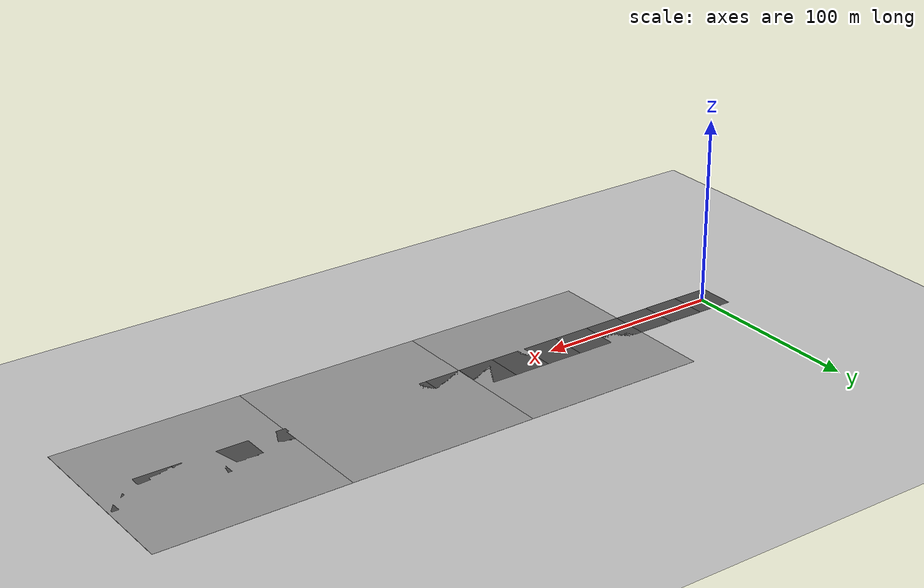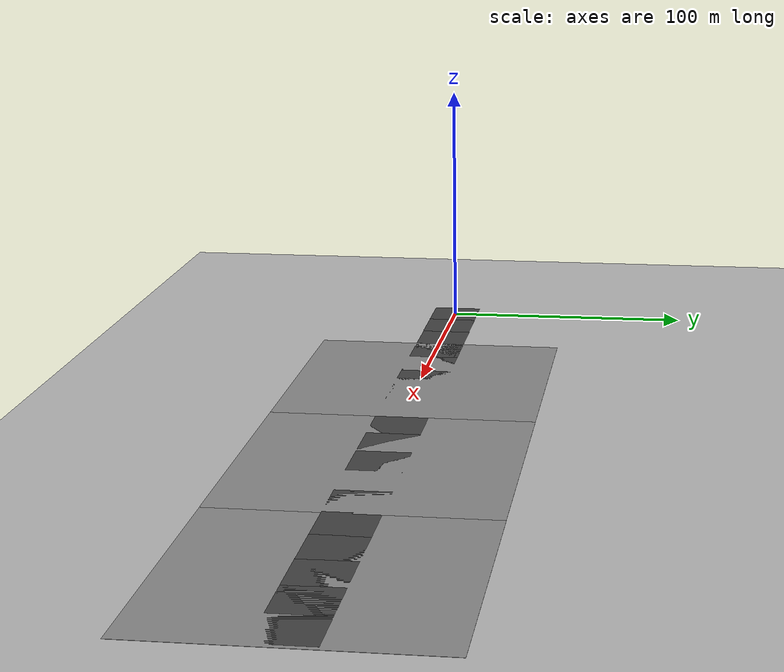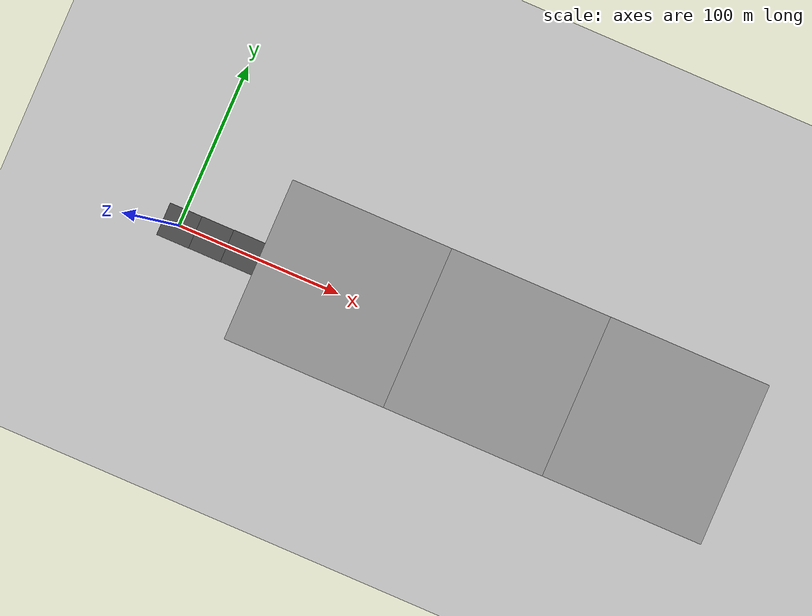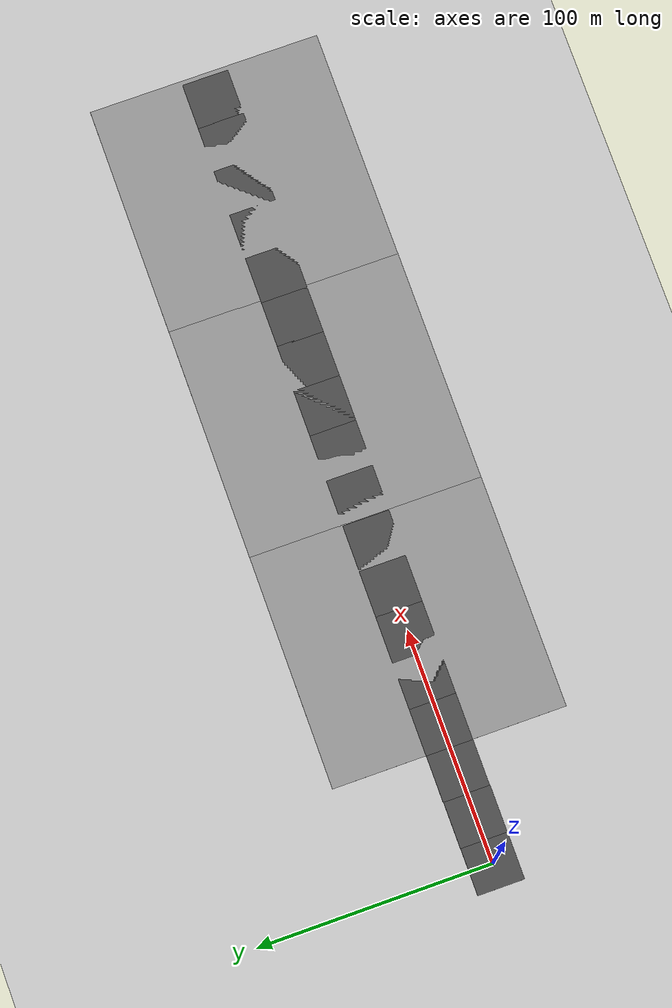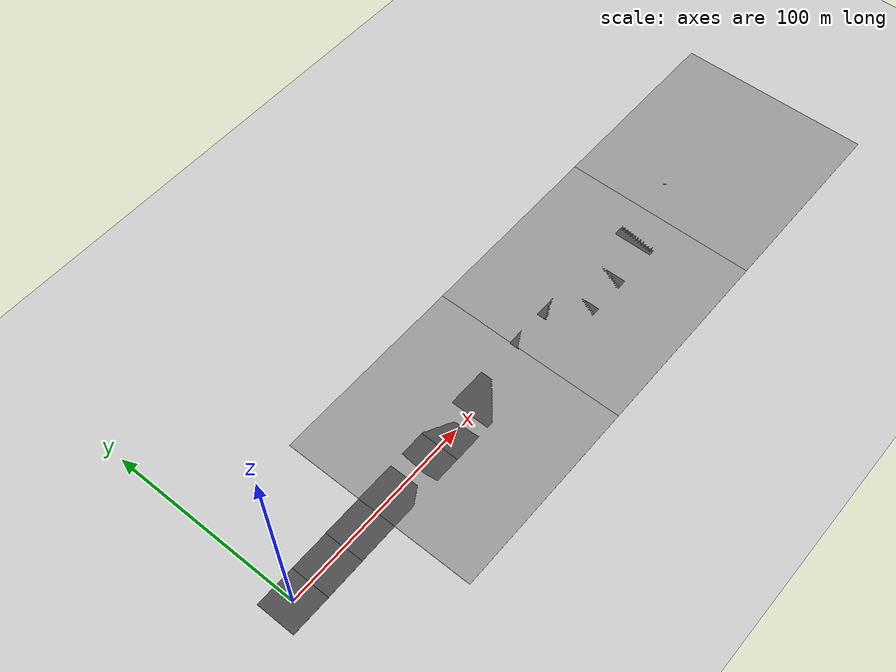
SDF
<sdf version="1.6">
 <world name="default">
  <light name="sun" type="directional">
   <pose>0 0 10 0 -0 0</pose>
   <diffuse>0.8 0.8 0.8 1</diffuse>
   <specular>0.2 0.2 0.2 1</specular>
   <attenuation>
    <range>1000</range>
    <constant>0.9</constant>
    <linear>0.01</linear>
    <quadratic>0.001</quadratic>
   </attenuation>
   <direction>-0.5 0.1 -0.9</direction>
  </light>
  <model name="ground_plane">
   <static>1</static>
   <link name="link">
    <collision name="collision">
     <geometry><plane><normal>0 0 1</normal><size>100 100</size></plane></geometry>
     <surface><friction><ode><mu>100</mu><mu2>50</mu2></ode></friction></surface>
    </collision>
    <visual name="visual">
     <cast_shadows>0</cast_shadows>
     <geometry><plane><normal>0 0 1</normal><size>100 100</size></plane></geometry>
     <material>
      <script><uri>file://media/materials/scripts/gazebo.material</uri><name>Gazebo/Grey</name></script>
     </material>
    </visual>
   </link>
  </model>
  <model name="asphalt_plane">
   <static>1</static>
   <link name="link">
    <collision name="collision"><geometry><box><size>20 20 0.1</size></box></geometry></collision>
    <visual name="visual">
     <cast_shadows>0</cast_shadows>
     <geometry><box><size>20 20 0.1</size></box></geometry>
     <material>
      <script>
       <uri>model://asphalt_plane/materials/scripts</uri>
       <uri>model://asphalt_plane/materials/textures</uri>
       <name>vrc/asphalt</name>
      </script>
     </material>
    </visual>
   </link>
  </model>
  <physics name="default_physics" default="0" type="ode">
   <ode>
    <solver>
     <type>quick</type>
     <iters>10</iters>
     <sor>1.3</sor>
     <use_dynamic_moi_rescaling>0</use_dynamic_moi_rescaling>
    </solver>
    <constraints>
     <cfm>0</cfm>
     <erp>0.2</erp>
     <contact_max_correcting_vel>100</contact_max_correcting_vel>
     <contact_surface_layer>0.001</contact_surface_layer>
    </constraints>
   </ode>
   <max_step_size>0.004</max_step_size>
   <real_time_factor>1</real_time_factor>
   <real_time_update_rate>250</real_time_update_rate>
  </physics>
  <gravity>0 0 -9.8066</gravity>
  <magnetic_field>6e-06 2.3e-05 -4.2e-05</magnetic_field>
  <atmosphere type="adiabatic"/>
  <scene><ambient>0.4 0.4 0.4 1</ambient><background>0.7 0.7 0.7 1</background><shadows>1</shadows></scene>
  <spherical_coordinates>
   <surface_model>EARTH_WGS84</surface_model>
   <latitude_deg>0</latitude_deg>
   <longitude_deg>0</longitude_deg>
   <elevation>0</elevation>
   <heading_deg>0</heading_deg>
  </spherical_coordinates>
  <model name="asphalt_plane_0">
   <static>1</static>
   <link name="link">
    <collision name="collision"><geometry><box><size>20 20 0.1</size></box></geometry></collision>
    <visual name="visual">
     <cast_shadows>0</cast_shadows>
     <geometry><box><size>20 20 0.1</size></box></geometry>
     <material>
      <script>
       <uri>model://asphalt_plane/materials/scripts</uri>
       <uri>model://asphalt_plane/materials/textures</uri>
       <name>vrc/asphalt</name>
      </script>
     </material>
    </visual>
   </link>
   <pose>19.9542 0.075557 0 0 -0 0</pose>
  </model>
  <model name="asphalt_plane_1">
   <static>1</static>
   <link name="link">
    <collision name="collision"><geometry><box><size>20 20 0.1</size></box></geometry></collision>
    <visual name="visual">
     <cast_shadows>0</cast_shadows>
     <geometry><box><size>20 20 0.1</size></box></geometry>
     <material>
      <script>
       <uri>model://asphalt_plane/materials/scripts</uri>
       <uri>model://asphalt_plane/materials/textures</uri>
       <name>vrc/asphalt</name>
      </script>
     </material>
    </visual>
   </link>
   <pose>39.6433 0.2429 0 0 -0 0</pose>
  </model>
  <model name="ground_plane_0">
   <static>1</static>
   <link name="link">
    <collision name="collision">
     <geometry><plane><normal>0 0 1</normal><size>100 100</size></plane></geometry>
     <surface>
      <contact><collide_bitmask>65535</collide_bitmask></contact>
      <friction><ode><mu>100</mu><mu2>50</mu2></ode></friction>
     </surface>
    </collision>
    <visual name="visual">
     <cast_shadows>0</cast_shadows>
     <geometry><plane><normal>0 0 1</normal><size>100 100</size></plane></geometry>
     <material>
      <script><uri>file://media/materials/scripts/gazebo.material</uri><name>Gazebo/Grey</name></script>
     </material>
    </visual>
   </link>
   <pose>99.5914 0.206765 0 0 -0 0</pose>
  </model>
  <model name="asphalt_plane_2">
   <static>1</static>
   <link name="link">
    <collision name="collision"><geometry><box><size>20 20 0.1</size></box></geometry></collision>
    <visual name="visual">
     <cast_shadows>0</cast_shadows>
     <geometry><box><size>20 20 0.1</size></box></geometry>
     <material>
      <script>
       <uri>model://asphalt_plane/materials/scripts</uri>
       <uri>model://asphalt_plane/materials/textures</uri>
       <name>vrc/asphalt</name>
      </script>
     </material>
    </visual>
   </link>
   <pose>59.4891 0.311433 0 0 -0 0</pose>
  </model>
  <model name="asphalt_plane_3">
   <static>1</static>
   <link name="link">
    <collision name="collision"><geometry><box><size>20 20 0.1</size></box></geometry></collision>
    <visual name="visual">
     <cast_shadows>0</cast_shadows>
     <geometry><box><size>20 20 0.1</size></box></geometry>
     <material>
      <script>
       <uri>model://asphalt_plane/materials/scripts</uri>
       <uri>model://asphalt_plane/materials/textures</uri>
       <name>vrc/asphalt</name>
      </script>
     </material>
    </visual>
   </link>
   <pose>79.4389 0.326107 0 0 -0 0</pose>
  </model>
  <model name="asphalt_plane_4">
   <static>1</static>
   <link name="link">
    <collision name="collision"><geometry><box><size>20 20 0.1</size></box></geometry></collision>
    <visual name="visual">
     <cast_shadows>0</cast_shadows>
     <geometry><box><size>20 20 0.1</size></box></geometry>
     <material>
      <script>
       <uri>model://asphalt_plane/materials/scripts</uri>
       <uri>model://asphalt_plane/materials/textures</uri>
       <name>vrc/asphalt</name>
      </script>
     </material>
    </visual>
   </link>
   <pose>99.396 0.280743 0 0 -0 0</pose>
  </model>
  <model name="asphalt_plane_5">
   <static>1</static>
   <link name="link">
    <collision name="collision"><geometry><box><size>20 20 0.1</size></box></geometry></collision>
    <visual name="visual">
     <cast_shadows>0</cast_shadows>
     <geometry><box><size>20 20 0.1</size></box></geometry>
     <material>
      <script>
       <uri>model://asphalt_plane/materials/scripts</uri>
       <uri>model://asphalt_plane/materials/textures</uri>
       <name>vrc/asphalt</name>
      </script>
     </material>
    </visual>
   </link>
   <pose>119.292 0.296855 0 0 -0 0</pose>
  </model>
  <model name="ground_plane_1">
   <static>1</static>
   <link name="link">
    <collision name="collision">
     <geometry><plane><normal>0 0 1</normal><size>100 100</size></plane></geometry>
     <surface>
      <contact><collide_bitmask>65535</collide_bitmask></contact>
      <friction><ode><mu>100</mu><mu2>50</mu2></ode></friction>
     </surface>
    </collision>
    <visual name="visual">
     <cast_shadows>0</cast_shadows>
     <geometry><plane><normal>0 0 1</normal><size>100 100</size></plane></geometry>
     <material>
      <script><uri>file://media/materials/scripts/gazebo.material</uri><name>Gazebo/Grey</name></script>
     </material>
    </visual>
   </link>
   <pose>199.404 0.23269 0 0 -0 0</pose>
  </model>
  <model name="asphalt_plane_6">
   <static>1</static>
   <link name="link">
    <collision name="collision"><geometry><box><size>20 20 0.1</size></box></geometry></collision>
    <visual name="visual">
     <cast_shadows>0</cast_shadows>
     <geometry><box><size>20 20 0.1</size></box></geometry>
     <material>
      <script>
       <uri>model://asphalt_plane/materials/scripts</uri>
       <uri>model://asphalt_plane/materials/textures</uri>
       <name>vrc/asphalt</name>
      </script>
     </material>
    </visual>
   </link>
   <pose>139.16 0.266225 0 0 -0 0</pose>
  </model>
  <model name="asphalt_plane_7">
   <static>1</static>
   <link name="link">
    <collision name="collision"><geometry><box><size>20 20 0.1</size></box></geometry></collision>
    <visual name="visual">
     <cast_shadows>0</cast_shadows>
     <geometry><box><size>20 20 0.1</size></box></geometry>
     <material>
      <script>
       <uri>model://asphalt_plane/materials/scripts</uri>
       <uri>model://asphalt_plane/materials/textures</uri>
       <name>vrc/asphalt</name>
      </script>
     </material>
    </visual>
   </link>
   <pose>158.933 0.284583 0 0 -0 0</pose>
  </model>
  <model name="asphalt_plane_8">
   <static>1</static>
   <link name="link">
    <collision name="collision"><geometry><box><size>20 20 0.1</size></box></geometry></collision>
    <visual name="visual">
     <cast_shadows>0</cast_shadows>
     <geometry><box><size>20 20 0.1</size></box></geometry>
     <material>
      <script>
       <uri>model://asphalt_plane/materials/scripts</uri>
       <uri>model://asphalt_plane/materials/textures</uri>
       <name>vrc/asphalt</name>
      </script>
     </material>
    </visual>
   </link>
   <pose>178.853 0.352259 0 0 -0 0</pose>
  </model>
  <model name="asphalt_plane_9">
   <static>1</static>
   <link name="link">
    <collision name="collision"><geometry><box><size>20 20 0.1</size></box></geometry></collision>
    <visual name="visual">
     <cast_shadows>0</cast_shadows>
     <geometry><box><size>20 20 0.1</size></box></geometry>
     <material>
      <script>
       <uri>model://asphalt_plane/materials/scripts</uri>
       <uri>model://asphalt_plane/materials/textures</uri>
       <name>vrc/asphalt</name>
      </script>
     </material>
    </visual>
   </link>
   <pose>198.829 0.333172 0 0 -0 0</pose>
  </model>
  <model name="asphalt_plane_10">
   <static>1</static>
   <link name="link">
    <collision name="collision"><geometry><box><size>20 20 0.1</size></box></geometry></collision>
    <visual name="visual">
     <cast_shadows>0</cast_shadows>
     <geometry><box><size>20 20 0.1</size></box></geometry>
     <material>
      <script>
       <uri>model://asphalt_plane/materials/scripts</uri>
       <uri>model://asphalt_plane/materials/textures</uri>
       <name>vrc/asphalt</name>
      </script>
     </material>
    </visual>
   </link>
   <pose>218.755 0.355304 0 0 -0 0</pose>
  </model>
  <model name="asphalt_plane_11">
   <static>1</static>
   <link name="link">
    <collision name="collision"><geometry><box><size>20 20 0.1</size></box></geometry></collision>
    <visual name="visual">
     <cast_shadows>0</cast_shadows>
     <geometry><box><size>20 20 0.1</size></box></geometry>
     <material>
      <script>
       <uri>model://asphalt_plane/materials/scripts</uri>
       <uri>model://asphalt_plane/materials/textures</uri>
       <name>vrc/asphalt</name>
      </script>
     </material>
    </visual>
   </link>
   <pose>238.343 0.342427 0 0 -0 0</pose>
  </model>
  <model name="ground_plane_2">
   <static>1</static>
   <link name="link">
    <collision name="collision">
     <geometry><plane><normal>0 0 1</normal><size>100 100</size></plane></geometry>
     <surface>
      <contact><collide_bitmask>65535</collide_bitmask></contact>
      <friction><ode><mu>100</mu><mu2>50</mu2></ode></friction>
     </surface>
    </collision>
    <visual name="visual">
     <cast_shadows>0</cast_shadows>
     <geometry><plane><normal>0 0 1</normal><size>100 100</size></plane></geometry>
     <material>
      <script><uri>file://media/materials/scripts/gazebo.material</uri><name>Gazebo/Grey</name></script>
     </material>
    </visual>
   </link>
   <pose>299.171 0.285499 0 0 -0 0</pose>
  </model>
  <model name="asphalt_plane_12">
   <static>1</static>
   <link name="link">
    <collision name="collision"><geometry><box><size>20 20 0.1</size></box></geometry></collision>
    <visual name="visual">
     <cast_shadows>0</cast_shadows>
     <geometry><box><size>20 20 0.1</size></box></geometry>
     <material>
      <script>
       <uri>model://asphalt_plane/materials/scripts</uri>
       <uri>model://asphalt_plane/materials/textures</uri>
       <name>vrc/asphalt</name>
      </script>
     </material>
    </visual>
   </link>
   <pose>258.329 0.338858 0 0 -0 0</pose>
  </model>
  <model name="asphalt_plane_13">
   <static>1</static>
   <link name="link">
    <collision name="collision"><geometry><box><size>20 20 0.1</size></box></geometry></collision>
    <visual name="visual">
     <cast_shadows>0</cast_shadows>
     <geometry><box><size>20 20 0.1</size></box></geometry>
     <material>
      <script>
       <uri>model://asphalt_plane/materials/scripts</uri>
       <uri>model://asphalt_plane/materials/textures</uri>
       <name>vrc/asphalt</name>
      </script>
     </material>
    </visual>
   </link>
   <pose>277.995 0.318464 0 0 -0 0</pose>
  </model>
  <model name="asphalt_plane_14">
   <static>1</static>
   <link name="link">
    <collision name="collision"><geometry><box><size>20 20 0.1</size></box></geometry></collision>
    <visual name="visual">
     <cast_shadows>0</cast_shadows>
     <geometry><box><size>20 20 0.1</size></box></geometry>
     <material>
      <script>
       <uri>model://asphalt_plane/materials/scripts</uri>
       <uri>model://asphalt_plane/materials/textures</uri>
       <name>vrc/asphalt</name>
      </script>
     </material>
    </visual>
   </link>
   <pose>297.825 0.272252 0 0 -0 0</pose>
  </model>
  <model name="asphalt_plane_15">
   <static>1</static>
   <link name="link">
    <collision name="collision"><geometry><box><size>20 20 0.1</size></box></geometry></collision>
    <visual name="visual">
     <cast_shadows>0</cast_shadows>
     <geometry><box><size>20 20 0.1</size></box></geometry>
     <material>
      <script>
       <uri>model://asphalt_plane/materials/scripts</uri>
       <uri>model://asphalt_plane/materials/textures</uri>
       <name>vrc/asphalt</name>
      </script>
     </material>
    </visual>
   </link>
   <pose>317.559 0.313725 0 0 -0 0</pose>
  </model>
  <model name="asphalt_plane_16">
   <static>1</static>
   <link name="link">
    <collision name="collision"><geometry><box><size>20 20 0.1</size></box></geometry></collision>
    <visual name="visual">
     <cast_shadows>0</cast_shadows>
     <geometry><box><size>20 20 0.1</size></box></geometry>
     <material>
      <script>
       <uri>model://asphalt_plane/materials/scripts</uri>
       <uri>model://asphalt_plane/materials/textures</uri>
       <name>vrc/asphalt</name>
      </script>
     </material>
    </visual>
   </link>
   <pose>337.388 0.305743 0 0 -0 0</pose>
  </model>
 </world>
</sdf>
